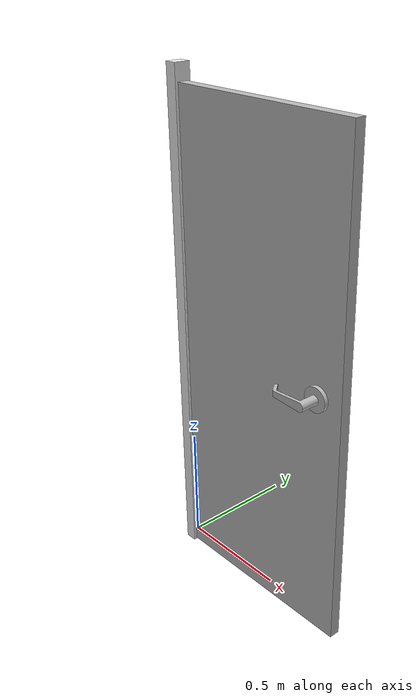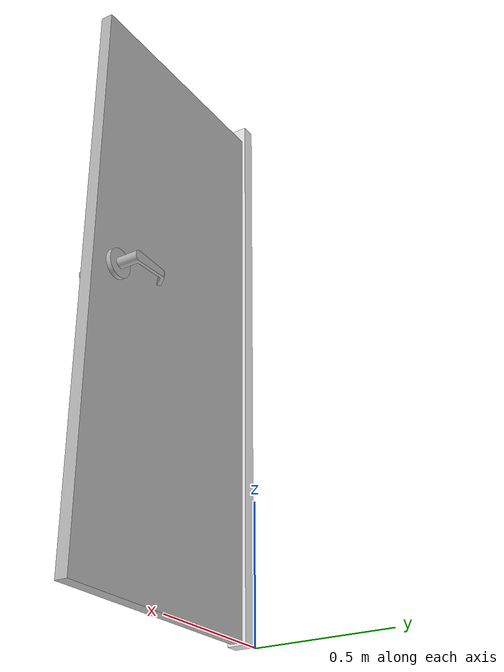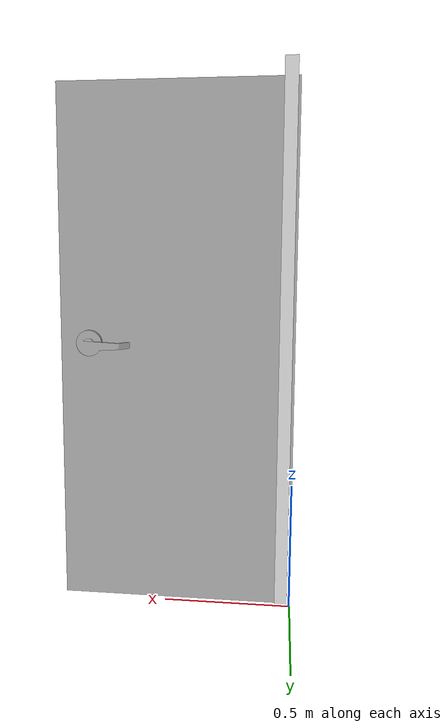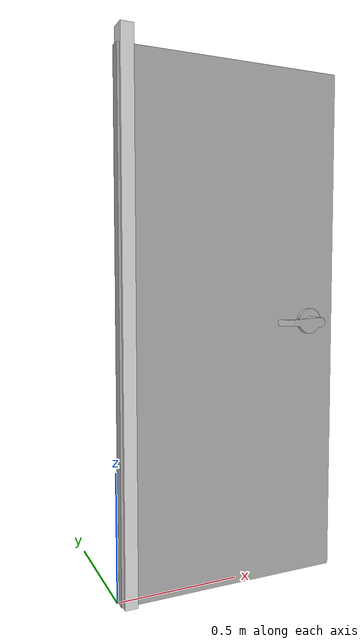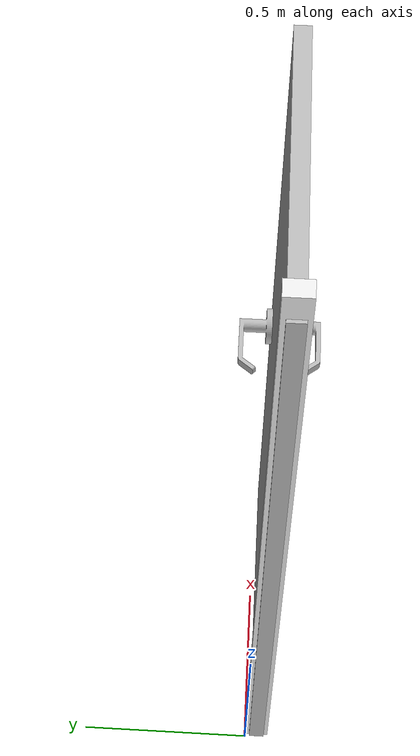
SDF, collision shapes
<?xml version="1.0" ?>
<sdf version="1.4">
  <model name="drc_practice_weighted_door">

    <link name="frame">

      <pose>0.06 -0.0005 0 0 0 0</pose>

      <inertial>
        <pose> -0.025145 -0.03429 1.0541 0 0 0</pose>
        <mass>19</mass>

        <inertia>
          <ixx>7.044583222633334</ixx>
          <ixy>0</ixy>
          <ixz>0</ixz>
          <iyy>7.041140846491667</iyy>
          <iyz>0</iyz>
          <izz>0.011451142458333334</izz>
        </inertia>

      </inertial>

      <collision name="collision_2">
        <pose> -0.025145 -0.03429 1.0541 0 0 0</pose>
        <geometry>
          <box>
            <size>0.05029 0.06858 2.1082</size>
          </box>
        </geometry>
      </collision>

      <visual name="visual">
        <pose>-0.025145 -0.03429 1.0541 0 0 0</pose>
        <geometry>
          <box>
            <size>0.05029 0.06858 2.1082</size>
          </box>
        </geometry>
        <material>
          <script>
            <uri>file://media/materials/scripts/gazebo.material</uri>
            <name>Gazebo/White</name>
          </script>
        </material>
      </visual>

    </link>
    <link name="door">
      <pose>-0.0 0.000 2.040 3.14159 0 0</pose>

      <inertial>
        <mass>41.3256</mass>
        <pose>0.4569 0.0349 1.016 0 0 0</pose>
        <inertia>

          <ixx>14.226337119849498</ixx>
          <ixy>0</ixy>
          <ixz>0</ixz>
          <iyy>17.098988253568</iyy>
          <iyz>0</iyz>
          <izz>2.8862596710175</izz>
        </inertia>
      </inertial>
      <collision name="collision">
        <pose>0.4569 0.0349 1.016 0 0 0</pose>
        <geometry>
          <box>
            <size>0.9144 0.04445 2.032</size>
          </box>
        </geometry>
      </collision>
      <visual name="visual">
        <pose>0 -0.06858 0 0 0 0</pose>
        <geometry>
          <mesh>
            <uri>model://hinged_door/meshes/door.dae</uri>
          </mesh>
        </geometry>
      </visual>
    </link>

    <link name="handles">

      <pose>0.8144 -0.07 1.05 0 0 3.141592653589793</pose>

      <inertial>
        <pose>0 -0.035 0 0 0 0</pose>

        <mass>2</mass>
        <inertia>
          <ixx>0.011011481198666666</ixx>
          <ixy>-0.0</ixy>
          <ixz>-0.006470568</ixz>
          <iyy>0.019018105065333336</iyy>
          <iyz>0.0</iyz>
          <izz>0.008243720166666666</izz>
        </inertia>
      </inertial>

      <collision name="handle1_collision">
        <pose>0.015 -0.015 0 -1.57 0 0</pose>
        <geometry>
          <mesh>
            <uri>model://door_handle/meshes/handle.dae</uri>
          </mesh>
        </geometry>
      </collision>
      <visual name="handle1_visual">
        <pose>0.015 -0.015 0 -1.57 0 0</pose>
        <geometry>
          <mesh>
            <uri>model://door_handle/meshes/handle.dae</uri>
          </mesh>
        </geometry>
      </visual>
      <collision name="handle2_collision">
        <pose>0.015 -0.055 0 1.57 0 0</pose>
        <geometry>
          <mesh>
            <uri>model://door_handle/meshes/handle.dae</uri>
          </mesh>
        </geometry>
      </collision>
      <visual name="handle2_visual">
        <pose>0.015 -0.055 0 1.57 0 0</pose>
        <geometry>
          <mesh>
            <uri>model://door_handle/meshes/handle.dae</uri>
          </mesh>
        </geometry>
      </visual>
    </link>

    <joint name="handle" type="revolute">
      <parent>door</parent>
      <child>handles</child>
      <pose>0.015 0 0 0 0 0</pose>
      <axis>
        <xyz>0 1 0</xyz>
        <limit>
          <lower>-1.58</lower>
          <upper>0</upper>
        </limit>
        <dynamics>
          <damping>1.0</damping>
          <friction>10</friction>
        </dynamics>
        <use_parent_model_frame>true</use_parent_model_frame>
      </axis>
      <physics>
        <ode>
          <cfm_damping>1</cfm_damping>
        </ode>
      </physics>
    </joint>

    <joint name="hinge" type="revolute">
      <parent>frame</parent>
      <child>door</child>
      <axis>
        <xyz>0 0 1</xyz>
        <limit>
          <lower>-1.58</lower>
          <upper>0</upper>
        </limit>
        <dynamics>
          <damping>15.53652360379284</damping>
          <friction>15.53652360379284</friction>
        </dynamics>
        <use_parent_model_frame>true</use_parent_model_frame>
      </axis>
      <physics>
        <ode>
          <cfm_damping>1</cfm_damping>
        </ode>
      </physics>
    </joint>
    <joint name="world_joint" type="revolute">
      <child>frame</child>
      <parent>world</parent>
      <axis>
        <limit>
          <lower>0</lower>
          <upper>0</upper>
        </limit>
        <xyz>0 1 0</xyz>
        <dynamics>
          <damping>1.0</damping>
        </dynamics>
        <use_parent_model_frame>true</use_parent_model_frame>
      </axis>
      <physics>
        <ode>
          <cfm_damping>1</cfm_damping>
        </ode>
      </physics>
    </joint>
  </model>
</sdf>
